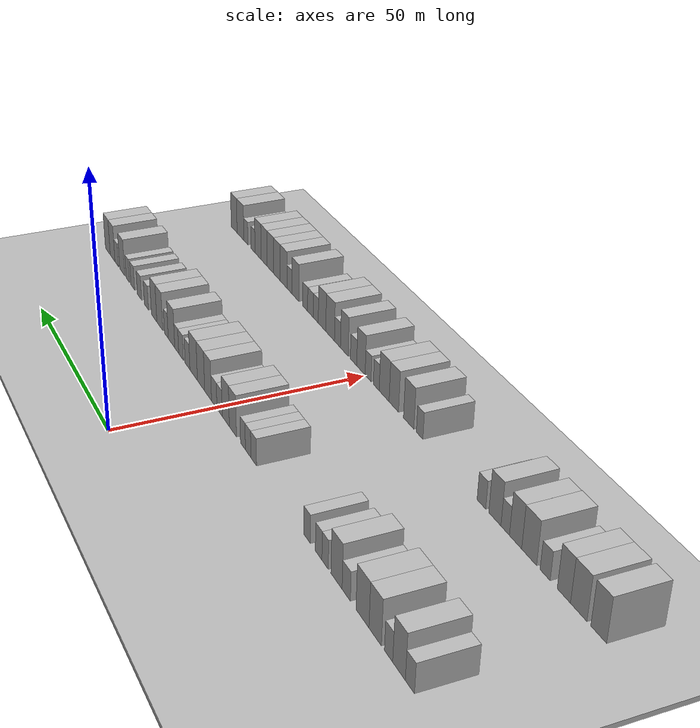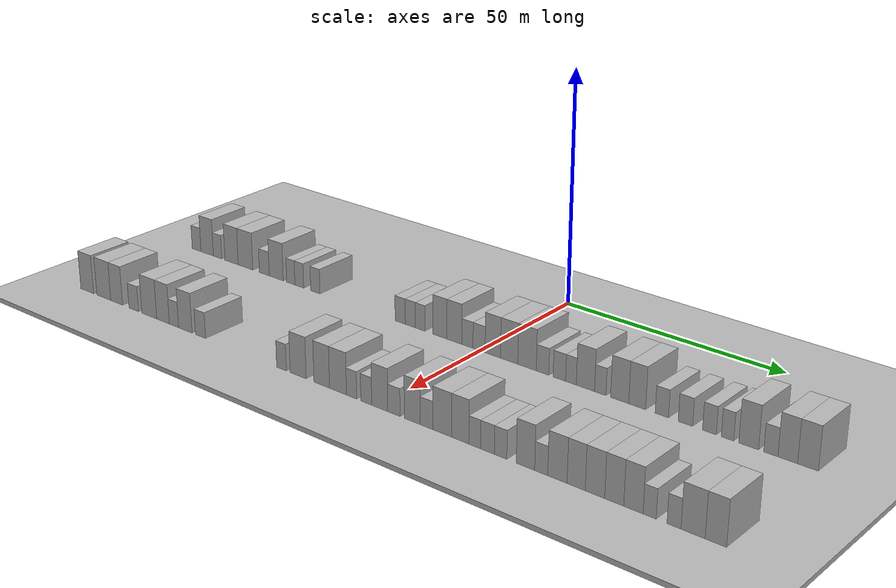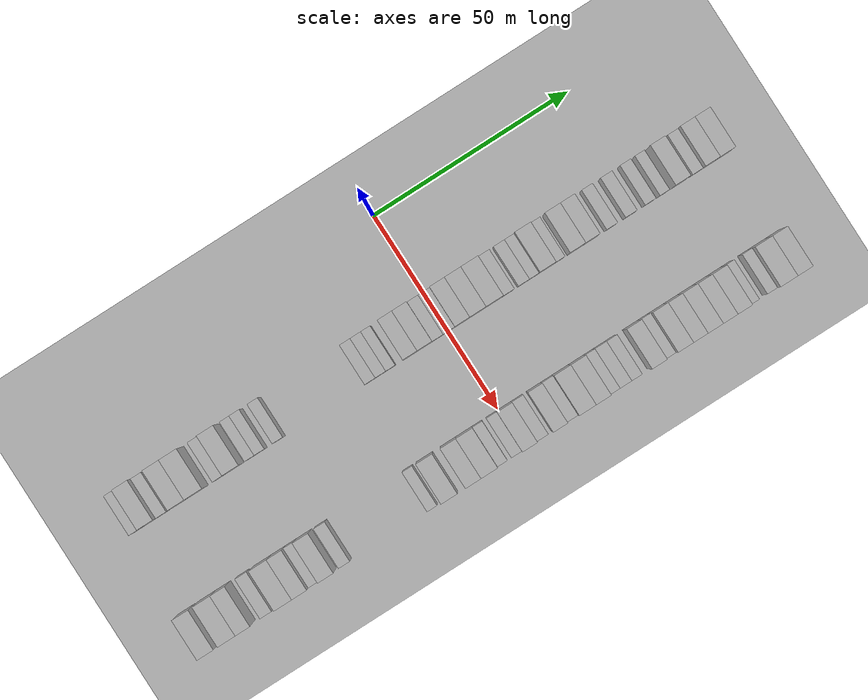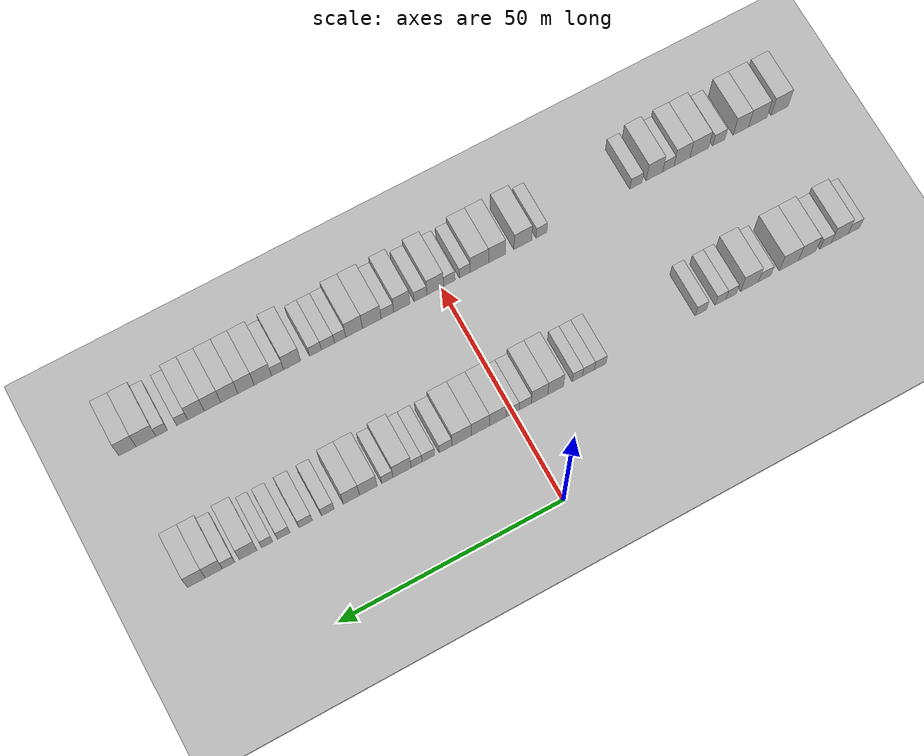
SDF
<sdf version="1.6">
 <world name="default">
  <include><name>ground_plane_1</name><uri>model://HANNAS_ground_plane</uri></include>
  <include>
   <name>ground_plane_2</name>
   <uri>model://HANNAS_ground_plane</uri>
   <pose>100 0 0  0 0 0</pose>
  </include>
  <model name="building_38">
   <static>1</static>
   <pose>25.0000 -79.3378 0 0.000000 0.000000 0.000000</pose>
   <link name="link">
    <pose>0 0 3.00 0 0 0</pose>
    <collision name="collision"><geometry><box><size>10.0000 2.8163 6.0000</size></box></geometry></collision>
    <visual name="visual">
     <cast_shadows>0</cast_shadows>
     <geometry><box><size>10.0000 2.8163 6.0000</size></box></geometry>
     <material>
      <script>
       <uri>model://HANNAS_wall/materials/scripts</uri>
       <uri>model://HANNAS_wall/materials/textures</uri>
       <name>vrc/HANNAS_wall</name>
      </script>
     </material>
    </visual>
   </link>
  </model>
  <model name="building_39">
   <static>1</static>
   <pose>25.0000 -75.9396 0 0.000000 0.000000 0.000000</pose>
   <link name="link">
    <pose>0 0 4.50 0 0 0</pose>
    <collision name="collision"><geometry><box><size>10.0000 3.9802 9.0000</size></box></geometry></collision>
    <visual name="visual">
     <cast_shadows>0</cast_shadows>
     <geometry><box><size>10.0000 3.9802 9.0000</size></box></geometry>
     <material>
      <script>
       <uri>model://HANNAS_wall/materials/scripts</uri>
       <uri>model://HANNAS_wall/materials/textures</uri>
       <name>vrc/HANNAS_wall</name>
      </script>
     </material>
    </visual>
   </link>
  </model>
  <model name="building_40">
   <static>1</static>
   <pose>25.0000 -72.6092 0 0.000000 0.000000 0.000000</pose>
   <link name="link">
    <pose>0 0 3.00 0 0 0</pose>
    <collision name="collision"><geometry><box><size>10.0000 2.6807 6.0000</size></box></geometry></collision>
    <visual name="visual">
     <cast_shadows>0</cast_shadows>
     <geometry><box><size>10.0000 2.6807 6.0000</size></box></geometry>
     <material>
      <script>
       <uri>model://HANNAS_wall/materials/scripts</uri>
       <uri>model://HANNAS_wall/materials/textures</uri>
       <name>vrc/HANNAS_wall</name>
      </script>
     </material>
    </visual>
   </link>
  </model>
  <model name="building_41">
   <static>1</static>
   <pose>25.0000 -68.1912 0 0.000000 0.000000 0.000000</pose>
   <link name="link">
    <pose>0 0 4.50 0 0 0</pose>
    <collision name="collision"><geometry><box><size>10.0000 4.1552 9.0000</size></box></geometry></collision>
    <visual name="visual">
     <cast_shadows>0</cast_shadows>
     <geometry><box><size>10.0000 4.1552 9.0000</size></box></geometry>
     <material>
      <script>
       <uri>model://HANNAS_wall/materials/scripts</uri>
       <uri>model://HANNAS_wall/materials/textures</uri>
       <name>vrc/HANNAS_wall</name>
      </script>
     </material>
    </visual>
   </link>
  </model>
  <model name="building_42">
   <static>1</static>
   <pose>25.0000 -63.8648 0 0.000000 0.000000 0.000000</pose>
   <link name="link">
    <pose>0 0 4.50 0 0 0</pose>
    <collision name="collision"><geometry><box><size>10.0000 4.4976 9.0000</size></box></geometry></collision>
    <visual name="visual">
     <cast_shadows>0</cast_shadows>
     <geometry><box><size>10.0000 4.4976 9.0000</size></box></geometry>
     <material>
      <script>
       <uri>model://HANNAS_wall/materials/scripts</uri>
       <uri>model://HANNAS_wall/materials/textures</uri>
       <name>vrc/HANNAS_wall</name>
      </script>
     </material>
    </visual>
   </link>
  </model>
  <model name="building_43">
   <static>1</static>
   <pose>25.0000 -58.1235 0 0.000000 0.000000 0.000000</pose>
   <link name="link">
    <pose>0 0 3.00 0 0 0</pose>
    <collision name="collision"><geometry><box><size>10.0000 2.9851 6.0000</size></box></geometry></collision>
    <visual name="visual">
     <cast_shadows>0</cast_shadows>
     <geometry><box><size>10.0000 2.9851 6.0000</size></box></geometry>
     <material>
      <script>
       <uri>model://HANNAS_wall/materials/scripts</uri>
       <uri>model://HANNAS_wall/materials/textures</uri>
       <name>vrc/HANNAS_wall</name>
      </script>
     </material>
    </visual>
   </link>
  </model>
  <model name="building_44">
   <static>1</static>
   <pose>25.0000 -54.5474 0 0.000000 0.000000 0.000000</pose>
   <link name="link">
    <pose>0 0 4.50 0 0 0</pose>
    <collision name="collision"><geometry><box><size>10.0000 4.1671 9.0000</size></box></geometry></collision>
    <visual name="visual">
     <cast_shadows>0</cast_shadows>
     <geometry><box><size>10.0000 4.1671 9.0000</size></box></geometry>
     <material>
      <script>
       <uri>model://HANNAS_wall/materials/scripts</uri>
       <uri>model://HANNAS_wall/materials/textures</uri>
       <name>vrc/HANNAS_wall</name>
      </script>
     </material>
    </visual>
   </link>
  </model>
  <model name="building_45">
   <static>1</static>
   <pose>25.0000 -50.2409 0 0.000000 0.000000 0.000000</pose>
   <link name="link">
    <pose>0 0 3.00 0 0 0</pose>
    <collision name="collision"><geometry><box><size>10.0000 2.4461 6.0000</size></box></geometry></collision>
    <visual name="visual">
     <cast_shadows>0</cast_shadows>
     <geometry><box><size>10.0000 2.4461 6.0000</size></box></geometry>
     <material>
      <script>
       <uri>model://HANNAS_wall/materials/scripts</uri>
       <uri>model://HANNAS_wall/materials/textures</uri>
       <name>vrc/HANNAS_wall</name>
      </script>
     </material>
    </visual>
   </link>
  </model>
  <model name="building_46">
   <static>1</static>
   <pose>25.0000 -47.7327 0 0.000000 0.000000 0.000000</pose>
   <link name="link">
    <pose>0 0 3.00 0 0 0</pose>
    <collision name="collision"><geometry><box><size>10.0000 2.5703 6.0000</size></box></geometry></collision>
    <visual name="visual">
     <cast_shadows>0</cast_shadows>
     <geometry><box><size>10.0000 2.5703 6.0000</size></box></geometry>
     <material>
      <script>
       <uri>model://HANNAS_wall/materials/scripts</uri>
       <uri>model://HANNAS_wall/materials/textures</uri>
       <name>vrc/HANNAS_wall</name>
      </script>
     </material>
    </visual>
   </link>
  </model>
  <model name="building_47">
   <static>1</static>
   <pose>25.0000 -43.1132 0 0.000000 0.000000 0.000000</pose>
   <link name="link">
    <pose>0 0 3.00 0 0 0</pose>
    <collision name="collision"><geometry><box><size>10.0000 2.6686 6.0000</size></box></geometry></collision>
    <visual name="visual">
     <cast_shadows>0</cast_shadows>
     <geometry><box><size>10.0000 2.6686 6.0000</size></box></geometry>
     <material>
      <script>
       <uri>model://HANNAS_wall/materials/scripts</uri>
       <uri>model://HANNAS_wall/materials/textures</uri>
       <name>vrc/HANNAS_wall</name>
      </script>
     </material>
    </visual>
   </link>
  </model>
  <model name="building_48">
   <static>1</static>
   <pose>25.0000 -19.7409 0 0.000000 0.000000 0.000000</pose>
   <link name="link">
    <pose>0 0 3.00 0 0 0</pose>
    <collision name="collision"><geometry><box><size>10.0000 2.6920 6.0000</size></box></geometry></collision>
    <visual name="visual">
     <cast_shadows>0</cast_shadows>
     <geometry><box><size>10.0000 2.6920 6.0000</size></box></geometry>
     <material>
      <script>
       <uri>model://HANNAS_wall/materials/scripts</uri>
       <uri>model://HANNAS_wall/materials/textures</uri>
       <name>vrc/HANNAS_wall</name>
      </script>
     </material>
    </visual>
   </link>
  </model>
  <model name="building_49">
   <static>1</static>
   <pose>25.0000 -17.0613 0 0.000000 0.000000 0.000000</pose>
   <link name="link">
    <pose>0 0 3.00 0 0 0</pose>
    <collision name="collision"><geometry><box><size>10.0000 2.6673 6.0000</size></box></geometry></collision>
    <visual name="visual">
     <cast_shadows>0</cast_shadows>
     <geometry><box><size>10.0000 2.6673 6.0000</size></box></geometry>
     <material>
      <script>
       <uri>model://HANNAS_wall/materials/scripts</uri>
       <uri>model://HANNAS_wall/materials/textures</uri>
       <name>vrc/HANNAS_wall</name>
      </script>
     </material>
    </visual>
   </link>
  </model>
  <model name="building_50">
   <static>1</static>
   <pose>25.0000 -14.5244 0 0.000000 0.000000 0.000000</pose>
   <link name="link">
    <pose>0 0 3.00 0 0 0</pose>
    <collision name="collision"><geometry><box><size>10.0000 2.4065 6.0000</size></box></geometry></collision>
    <visual name="visual">
     <cast_shadows>0</cast_shadows>
     <geometry><box><size>10.0000 2.4065 6.0000</size></box></geometry>
     <material>
      <script>
       <uri>model://HANNAS_wall/materials/scripts</uri>
       <uri>model://HANNAS_wall/materials/textures</uri>
       <name>vrc/HANNAS_wall</name>
      </script>
     </material>
    </visual>
   </link>
  </model>
  <model name="building_51">
   <static>1</static>
   <pose>25.0000 -9.5080 0 0.000000 0.000000 0.000000</pose>
   <link name="link">
    <pose>0 0 4.50 0 0 0</pose>
    <collision name="collision"><geometry><box><size>10.0000 3.6264 9.0000</size></box></geometry></collision>
    <visual name="visual">
     <cast_shadows>0</cast_shadows>
     <geometry><box><size>10.0000 3.6264 9.0000</size></box></geometry>
     <material>
      <script>
       <uri>model://HANNAS_wall/materials/scripts</uri>
       <uri>model://HANNAS_wall/materials/textures</uri>
       <name>vrc/HANNAS_wall</name>
      </script>
     </material>
    </visual>
   </link>
  </model>
  <model name="building_52">
   <static>1</static>
   <pose>25.0000 -5.8347 0 0.000000 0.000000 0.000000</pose>
   <link name="link">
    <pose>0 0 4.50 0 0 0</pose>
    <collision name="collision"><geometry><box><size>10.0000 3.7202 9.0000</size></box></geometry></collision>
    <visual name="visual">
     <cast_shadows>0</cast_shadows>
     <geometry><box><size>10.0000 3.7202 9.0000</size></box></geometry>
     <material>
      <script>
       <uri>model://HANNAS_wall/materials/scripts</uri>
       <uri>model://HANNAS_wall/materials/textures</uri>
       <name>vrc/HANNAS_wall</name>
      </script>
     </material>
    </visual>
   </link>
  </model>
  <model name="building_53">
   <static>1</static>
   <pose>25.0000 -2.5876 0 0.000000 0.000000 0.000000</pose>
   <link name="link">
    <pose>0 0 3.00 0 0 0</pose>
    <collision name="collision"><geometry><box><size>10.0000 2.7738 6.0000</size></box></geometry></collision>
    <visual name="visual">
     <cast_shadows>0</cast_shadows>
     <geometry><box><size>10.0000 2.7738 6.0000</size></box></geometry>
     <material>
      <script>
       <uri>model://HANNAS_wall/materials/scripts</uri>
       <uri>model://HANNAS_wall/materials/textures</uri>
       <name>vrc/HANNAS_wall</name>
      </script>
     </material>
    </visual>
   </link>
  </model>
  <model name="building_54">
   <static>1</static>
   <pose>25.0000 0.2778 0 0.000000 0.000000 0.000000</pose>
   <link name="link">
    <pose>0 0 3.00 0 0 0</pose>
    <collision name="collision"><geometry><box><size>10.0000 2.9571 6.0000</size></box></geometry></collision>
    <visual name="visual">
     <cast_shadows>0</cast_shadows>
     <geometry><box><size>10.0000 2.9571 6.0000</size></box></geometry>
     <material>
      <script>
       <uri>model://HANNAS_wall/materials/scripts</uri>
       <uri>model://HANNAS_wall/materials/textures</uri>
       <name>vrc/HANNAS_wall</name>
      </script>
     </material>
    </visual>
   </link>
  </model>
  <model name="building_55">
   <static>1</static>
   <pose>25.0000 3.6304 0 0.000000 0.000000 0.000000</pose>
   <link name="link">
    <pose>0 0 4.50 0 0 0</pose>
    <collision name="collision"><geometry><box><size>10.0000 3.7481 9.0000</size></box></geometry></collision>
    <visual name="visual">
     <cast_shadows>0</cast_shadows>
     <geometry><box><size>10.0000 3.7481 9.0000</size></box></geometry>
     <material>
      <script>
       <uri>model://HANNAS_wall/materials/scripts</uri>
       <uri>model://HANNAS_wall/materials/textures</uri>
       <name>vrc/HANNAS_wall</name>
      </script>
     </material>
    </visual>
   </link>
  </model>
  <model name="building_56">
   <static>1</static>
   <pose>25.0000 7.5608 0 0.000000 0.000000 0.000000</pose>
   <link name="link">
    <pose>0 0 4.50 0 0 0</pose>
    <collision name="collision"><geometry><box><size>10.0000 4.1126 9.0000</size></box></geometry></collision>
    <visual name="visual">
     <cast_shadows>0</cast_shadows>
     <geometry><box><size>10.0000 4.1126 9.0000</size></box></geometry>
     <material>
      <script>
       <uri>model://HANNAS_wall/materials/scripts</uri>
       <uri>model://HANNAS_wall/materials/textures</uri>
       <name>vrc/HANNAS_wall</name>
      </script>
     </material>
    </visual>
   </link>
  </model>
  <model name="building_57">
   <static>1</static>
   <pose>25.0000 11.7900 0 0.000000 0.000000 0.000000</pose>
   <link name="link">
    <pose>0 0 4.50 0 0 0</pose>
    <collision name="collision"><geometry><box><size>10.0000 4.3458 9.0000</size></box></geometry></collision>
    <visual name="visual">
     <cast_shadows>0</cast_shadows>
     <geometry><box><size>10.0000 4.3458 9.0000</size></box></geometry>
     <material>
      <script>
       <uri>model://HANNAS_wall/materials/scripts</uri>
       <uri>model://HANNAS_wall/materials/textures</uri>
       <name>vrc/HANNAS_wall</name>
      </script>
     </material>
    </visual>
   </link>
  </model>
  <model name="building_58">
   <static>1</static>
   <pose>25.0000 15.4108 0 0.000000 0.000000 0.000000</pose>
   <link name="link">
    <pose>0 0 3.00 0 0 0</pose>
    <collision name="collision"><geometry><box><size>10.0000 2.8957 6.0000</size></box></geometry></collision>
    <visual name="visual">
     <cast_shadows>0</cast_shadows>
     <geometry><box><size>10.0000 2.8957 6.0000</size></box></geometry>
     <material>
      <script>
       <uri>model://HANNAS_wall/materials/scripts</uri>
       <uri>model://HANNAS_wall/materials/textures</uri>
       <name>vrc/HANNAS_wall</name>
      </script>
     </material>
    </visual>
   </link>
  </model>
  <model name="building_59">
   <static>1</static>
   <pose>25.0000 19.2690 0 0.000000 0.000000 0.000000</pose>
   <link name="link">
    <pose>0 0 3.00 0 0 0</pose>
    <collision name="collision"><geometry><box><size>10.0000 2.8208 6.0000</size></box></geometry></collision>
    <visual name="visual">
     <cast_shadows>0</cast_shadows>
     <geometry><box><size>10.0000 2.8208 6.0000</size></box></geometry>
     <material>
      <script>
       <uri>model://HANNAS_wall/materials/scripts</uri>
       <uri>model://HANNAS_wall/materials/textures</uri>
       <name>vrc/HANNAS_wall</name>
      </script>
     </material>
    </visual>
   </link>
  </model>
  <model name="building_60">
   <static>1</static>
   <pose>25.0000 21.8940 0 0.000000 0.000000 0.000000</pose>
   <link name="link">
    <pose>0 0 3.00 0 0 0</pose>
    <collision name="collision"><geometry><box><size>10.0000 2.4291 6.0000</size></box></geometry></collision>
    <visual name="visual">
     <cast_shadows>0</cast_shadows>
     <geometry><box><size>10.0000 2.4291 6.0000</size></box></geometry>
     <material>
      <script>
       <uri>model://HANNAS_wall/materials/scripts</uri>
       <uri>model://HANNAS_wall/materials/textures</uri>
       <name>vrc/HANNAS_wall</name>
      </script>
     </material>
    </visual>
   </link>
  </model>
  <model name="building_61">
   <static>1</static>
   <pose>25.0000 25.1440 0 0.000000 0.000000 0.000000</pose>
   <link name="link">
    <pose>0 0 4.50 0 0 0</pose>
    <collision name="collision"><geometry><box><size>10.0000 4.0709 9.0000</size></box></geometry></collision>
    <visual name="visual">
     <cast_shadows>0</cast_shadows>
     <geometry><box><size>10.0000 4.0709 9.0000</size></box></geometry>
     <material>
      <script>
       <uri>model://HANNAS_wall/materials/scripts</uri>
       <uri>model://HANNAS_wall/materials/textures</uri>
       <name>vrc/HANNAS_wall</name>
      </script>
     </material>
    </visual>
   </link>
  </model>
  <model name="building_62">
   <static>1</static>
   <pose>25.0000 28.4302 0 0.000000 0.000000 0.000000</pose>
   <link name="link">
    <pose>0 0 3.00 0 0 0</pose>
    <collision name="collision"><geometry><box><size>10.0000 2.5014 6.0000</size></box></geometry></collision>
    <visual name="visual">
     <cast_shadows>0</cast_shadows>
     <geometry><box><size>10.0000 2.5014 6.0000</size></box></geometry>
     <material>
      <script>
       <uri>model://HANNAS_wall/materials/scripts</uri>
       <uri>model://HANNAS_wall/materials/textures</uri>
       <name>vrc/HANNAS_wall</name>
      </script>
     </material>
    </visual>
   </link>
  </model>
  <model name="building_63">
   <static>1</static>
   <pose>25.0000 32.6398 0 0.000000 0.000000 0.000000</pose>
   <link name="link">
    <pose>0 0 4.50 0 0 0</pose>
    <collision name="collision"><geometry><box><size>10.0000 3.9178 9.0000</size></box></geometry></collision>
    <visual name="visual">
     <cast_shadows>0</cast_shadows>
     <geometry><box><size>10.0000 3.9178 9.0000</size></box></geometry>
     <material>
      <script>
       <uri>model://HANNAS_wall/materials/scripts</uri>
       <uri>model://HANNAS_wall/materials/textures</uri>
       <name>vrc/HANNAS_wall</name>
      </script>
     </material>
    </visual>
   </link>
  </model>
  <model name="building_64">
   <static>1</static>
   <pose>25.0000 36.4016 0 0.000000 0.000000 0.000000</pose>
   <link name="link">
    <pose>0 0 4.50 0 0 0</pose>
    <collision name="collision"><geometry><box><size>10.0000 3.6057 9.0000</size></box></geometry></collision>
    <visual name="visual">
     <cast_shadows>0</cast_shadows>
     <geometry><box><size>10.0000 3.6057 9.0000</size></box></geometry>
     <material>
      <script>
       <uri>model://HANNAS_wall/materials/scripts</uri>
       <uri>model://HANNAS_wall/materials/textures</uri>
       <name>vrc/HANNAS_wall</name>
      </script>
     </material>
    </visual>
   </link>
  </model>
  <model name="building_65">
   <static>1</static>
   <pose>25.0000 41.5970 0 0.000000 0.000000 0.000000</pose>
   <link name="link">
    <pose>0 0 3.00 0 0 0</pose>
    <collision name="collision"><geometry><box><size>10.0000 2.7852 6.0000</size></box></geometry></collision>
    <visual name="visual">
     <cast_shadows>0</cast_shadows>
     <geometry><box><size>10.0000 2.7852 6.0000</size></box></geometry>
     <material>
      <script>
       <uri>model://HANNAS_wall/materials/scripts</uri>
       <uri>model://HANNAS_wall/materials/textures</uri>
       <name>vrc/HANNAS_wall</name>
      </script>
     </material>
    </visual>
   </link>
  </model>
  <model name="building_66">
   <static>1</static>
   <pose>25.0000 46.4576 0 0.000000 0.000000 0.000000</pose>
   <link name="link">
    <pose>0 0 3.00 0 0 0</pose>
    <collision name="collision"><geometry><box><size>10.0000 2.9360 6.0000</size></box></geometry></collision>
    <visual name="visual">
     <cast_shadows>0</cast_shadows>
     <geometry><box><size>10.0000 2.9360 6.0000</size></box></geometry>
     <material>
      <script>
       <uri>model://HANNAS_wall/materials/scripts</uri>
       <uri>model://HANNAS_wall/materials/textures</uri>
       <name>vrc/HANNAS_wall</name>
      </script>
     </material>
    </visual>
   </link>
  </model>
  <model name="building_67">
   <static>1</static>
   <pose>25.0000 51.3011 0 0.000000 0.000000 0.000000</pose>
   <link name="link">
    <pose>0 0 3.00 0 0 0</pose>
    <collision name="collision"><geometry><box><size>10.0000 2.7510 6.0000</size></box></geometry></collision>
    <visual name="visual">
     <cast_shadows>0</cast_shadows>
     <geometry><box><size>10.0000 2.7510 6.0000</size></box></geometry>
     <material>
      <script>
       <uri>model://HANNAS_wall/materials/scripts</uri>
       <uri>model://HANNAS_wall/materials/textures</uri>
       <name>vrc/HANNAS_wall</name>
      </script>
     </material>
    </visual>
   </link>
  </model>
  <model name="building_68">
   <static>1</static>
   <pose>25.0000 54.8988 0 0.000000 0.000000 0.000000</pose>
   <link name="link">
    <pose>0 0 3.00 0 0 0</pose>
    <collision name="collision"><geometry><box><size>10.0000 2.4443 6.0000</size></box></geometry></collision>
    <visual name="visual">
     <cast_shadows>0</cast_shadows>
     <geometry><box><size>10.0000 2.4443 6.0000</size></box></geometry>
     <material>
      <script>
       <uri>model://HANNAS_wall/materials/scripts</uri>
       <uri>model://HANNAS_wall/materials/textures</uri>
       <name>vrc/HANNAS_wall</name>
      </script>
     </material>
    </visual>
   </link>
  </model>
  <model name="building_69">
   <static>1</static>
   <pose>25.0000 59.0341 0 0.000000 0.000000 0.000000</pose>
   <link name="link">
    <pose>0 0 4.50 0 0 0</pose>
    <collision name="collision"><geometry><box><size>10.0000 3.8263 9.0000</size></box></geometry></collision>
    <visual name="visual">
     <cast_shadows>0</cast_shadows>
     <geometry><box><size>10.0000 3.8263 9.0000</size></box></geometry>
     <material>
      <script>
       <uri>model://HANNAS_wall/materials/scripts</uri>
       <uri>model://HANNAS_wall/materials/textures</uri>
       <name>vrc/HANNAS_wall</name>
      </script>
     </material>
    </visual>
   </link>
  </model>
  <model name="building_70">
   <static>1</static>
   <pose>25.0000 63.2870 0 0.000000 0.000000 0.000000</pose>
   <link name="link">
    <pose>0 0 3.00 0 0 0</pose>
    <collision name="collision"><geometry><box><size>10.0000 2.6795 6.0000</size></box></geometry></collision>
    <visual name="visual">
     <cast_shadows>0</cast_shadows>
     <geometry><box><size>10.0000 2.6795 6.0000</size></box></geometry>
     <material>
      <script>
       <uri>model://HANNAS_wall/materials/scripts</uri>
       <uri>model://HANNAS_wall/materials/textures</uri>
       <name>vrc/HANNAS_wall</name>
      </script>
     </material>
    </visual>
   </link>
  </model>
  <model name="building_71">
   <static>1</static>
   <pose>25.0000 66.4737 0 0.000000 0.000000 0.000000</pose>
   <link name="link">
    <pose>0 0 4.50 0 0 0</pose>
    <collision name="collision"><geometry><box><size>10.0000 3.6940 9.0000</size></box></geometry></collision>
    <visual name="visual">
     <cast_shadows>0</cast_shadows>
     <geometry><box><size>10.0000 3.6940 9.0000</size></box></geometry>
     <material>
      <script>
       <uri>model://HANNAS_wall/materials/scripts</uri>
       <uri>model://HANNAS_wall/materials/textures</uri>
       <name>vrc/HANNAS_wall</name>
      </script>
     </material>
    </visual>
   </link>
  </model>
  <model name="building_72">
   <static>1</static>
   <pose>25.0000 70.2441 0 0.000000 0.000000 0.000000</pose>
   <link name="link">
    <pose>0 0 4.50 0 0 0</pose>
    <collision name="collision"><geometry><box><size>10.0000 3.8467 9.0000</size></box></geometry></collision>
    <visual name="visual">
     <cast_shadows>0</cast_shadows>
     <geometry><box><size>10.0000 3.8467 9.0000</size></box></geometry>
     <material>
      <script>
       <uri>model://HANNAS_wall/materials/scripts</uri>
       <uri>model://HANNAS_wall/materials/textures</uri>
       <name>vrc/HANNAS_wall</name>
      </script>
     </material>
    </visual>
   </link>
  </model>
  <model name="building_140">
   <static>1</static>
   <pose>55.0000 -79.9674 0 0.000000 0.000000 0.000000</pose>
   <link name="link">
    <pose>0 0 4.50 0 0 0</pose>
    <collision name="collision"><geometry><box><size>10.0000 4.1324 9.0000</size></box></geometry></collision>
    <visual name="visual">
     <cast_shadows>0</cast_shadows>
     <geometry><box><size>10.0000 4.1324 9.0000</size></box></geometry>
     <material>
      <script>
       <uri>model://HANNAS_wall/materials/scripts</uri>
       <uri>model://HANNAS_wall/materials/textures</uri>
       <name>vrc/HANNAS_wall</name>
      </script>
     </material>
    </visual>
   </link>
  </model>
  <model name="building_141">
   <static>1</static>
   <pose>55.0000 -74.6746 0 0.000000 0.000000 0.000000</pose>
   <link name="link">
    <pose>0 0 4.50 0 0 0</pose>
    <collision name="collision"><geometry><box><size>10.0000 4.4532 9.0000</size></box></geometry></collision>
    <visual name="visual">
     <cast_shadows>0</cast_shadows>
     <geometry><box><size>10.0000 4.4532 9.0000</size></box></geometry>
     <material>
      <script>
       <uri>model://HANNAS_wall/materials/scripts</uri>
       <uri>model://HANNAS_wall/materials/textures</uri>
       <name>vrc/HANNAS_wall</name>
      </script>
     </material>
    </visual>
   </link>
  </model>
  <model name="building_142">
   <static>1</static>
   <pose>55.0000 -70.5983 0 0.000000 0.000000 0.000000</pose>
   <link name="link">
    <pose>0 0 4.50 0 0 0</pose>
    <collision name="collision"><geometry><box><size>10.0000 3.6994 9.0000</size></box></geometry></collision>
    <visual name="visual">
     <cast_shadows>0</cast_shadows>
     <geometry><box><size>10.0000 3.6994 9.0000</size></box></geometry>
     <material>
      <script>
       <uri>model://HANNAS_wall/materials/scripts</uri>
       <uri>model://HANNAS_wall/materials/textures</uri>
       <name>vrc/HANNAS_wall</name>
      </script>
     </material>
    </visual>
   </link>
  </model>
  <model name="building_143">
   <static>1</static>
   <pose>55.0000 -65.2769 0 0.000000 0.000000 0.000000</pose>
   <link name="link">
    <pose>0 0 3.00 0 0 0</pose>
    <collision name="collision"><geometry><box><size>10.0000 2.9434 6.0000</size></box></geometry></collision>
    <visual name="visual">
     <cast_shadows>0</cast_shadows>
     <geometry><box><size>10.0000 2.9434 6.0000</size></box></geometry>
     <material>
      <script>
       <uri>model://HANNAS_wall/materials/scripts</uri>
       <uri>model://HANNAS_wall/materials/textures</uri>
       <name>vrc/HANNAS_wall</name>
      </script>
     </material>
    </visual>
   </link>
  </model>
  <model name="building_144">
   <static>1</static>
   <pose>55.0000 -60.5575 0 0.000000 0.000000 0.000000</pose>
   <link name="link">
    <pose>0 0 4.50 0 0 0</pose>
    <collision name="collision"><geometry><box><size>10.0000 4.4954 9.0000</size></box></geometry></collision>
    <visual name="visual">
     <cast_shadows>0</cast_shadows>
     <geometry><box><size>10.0000 4.4954 9.0000</size></box></geometry>
     <material>
      <script>
       <uri>model://HANNAS_wall/materials/scripts</uri>
       <uri>model://HANNAS_wall/materials/textures</uri>
       <name>vrc/HANNAS_wall</name>
      </script>
     </material>
    </visual>
   </link>
  </model>
  <model name="building_145">
   <static>1</static>
   <pose>55.0000 -56.4170 0 0.000000 0.000000 0.000000</pose>
   <link name="link">
    <pose>0 0 4.50 0 0 0</pose>
    <collision name="collision"><geometry><box><size>10.0000 3.7855 9.0000</size></box></geometry></collision>
    <visual name="visual">
     <cast_shadows>0</cast_shadows>
     <geometry><box><size>10.0000 3.7855 9.0000</size></box></geometry>
     <material>
      <script>
       <uri>model://HANNAS_wall/materials/scripts</uri>
       <uri>model://HANNAS_wall/materials/textures</uri>
       <name>vrc/HANNAS_wall</name>
      </script>
     </material>
    </visual>
   </link>
  </model>
  <model name="building_146">
   <static>1</static>
   <pose>55.0000 -53.1741 0 0.000000 0.000000 0.000000</pose>
   <link name="link">
    <pose>0 0 3.00 0 0 0</pose>
    <collision name="collision"><geometry><box><size>10.0000 2.7004 6.0000</size></box></geometry></collision>
    <visual name="visual">
     <cast_shadows>0</cast_shadows>
     <geometry><box><size>10.0000 2.7004 6.0000</size></box></geometry>
     <material>
      <script>
       <uri>model://HANNAS_wall/materials/scripts</uri>
       <uri>model://HANNAS_wall/materials/textures</uri>
       <name>vrc/HANNAS_wall</name>
      </script>
     </material>
    </visual>
   </link>
  </model>
  <model name="building_147">
   <static>1</static>
   <pose>55.0000 -49.8549 0 0.000000 0.000000 0.000000</pose>
   <link name="link">
    <pose>0 0 4.50 0 0 0</pose>
    <collision name="collision"><geometry><box><size>10.0000 3.9380 9.0000</size></box></geometry></collision>
    <visual name="visual">
     <cast_shadows>0</cast_shadows>
     <geometry><box><size>10.0000 3.9380 9.0000</size></box></geometry>
     <material>
      <script>
       <uri>model://HANNAS_wall/materials/scripts</uri>
       <uri>model://HANNAS_wall/materials/textures</uri>
       <name>vrc/HANNAS_wall</name>
      </script>
     </material>
    </visual>
   </link>
  </model>
  <model name="building_148">
   <static>1</static>
   <pose>55.0000 -45.4440 0 0.000000 0.000000 0.000000</pose>
   <link name="link">
    <pose>0 0 3.00 0 0 0</pose>
    <collision name="collision"><geometry><box><size>10.0000 2.8840 6.0000</size></box></geometry></collision>
    <visual name="visual">
     <cast_shadows>0</cast_shadows>
     <geometry><box><size>10.0000 2.8840 6.0000</size></box></geometry>
     <material>
      <script>
       <uri>model://HANNAS_wall/materials/scripts</uri>
       <uri>model://HANNAS_wall/materials/textures</uri>
       <name>vrc/HANNAS_wall</name>
      </script>
     </material>
    </visual>
   </link>
  </model>
  <model name="building_149">
   <static>1</static>
   <pose>55.0000 -23.1875 0 0.000000 0.000000 0.000000</pose>
   <link name="link">
    <pose>0 0 3.00 0 0 0</pose>
    <collision name="collision"><geometry><box><size>10.0000 2.5430 6.0000</size></box></geometry></collision>
    <visual name="visual">
     <cast_shadows>0</cast_shadows>
     <geometry><box><size>10.0000 2.5430 6.0000</size></box></geometry>
     <material>
      <script>
       <uri>model://HANNAS_wall/materials/scripts</uri>
       <uri>model://HANNAS_wall/materials/textures</uri>
       <name>vrc/HANNAS_wall</name>
      </script>
     </material>
    </visual>
   </link>
  </model>
  <model name="building_150">
   <static>1</static>
   <pose>55.0000 -18.8462 0 0.000000 0.000000 0.000000</pose>
   <link name="link">
    <pose>0 0 4.50 0 0 0</pose>
    <collision name="collision"><geometry><box><size>10.0000 4.1396 9.0000</size></box></geometry></collision>
    <visual name="visual">
     <cast_shadows>0</cast_shadows>
     <geometry><box><size>10.0000 4.1396 9.0000</size></box></geometry>
     <material>
      <script>
       <uri>model://HANNAS_wall/materials/scripts</uri>
       <uri>model://HANNAS_wall/materials/textures</uri>
       <name>vrc/HANNAS_wall</name>
      </script>
     </material>
    </visual>
   </link>
  </model>
  <model name="building_151">
   <static>1</static>
   <pose>55.0000 -12.8151 0 0.000000 0.000000 0.000000</pose>
   <link name="link">
    <pose>0 0 4.50 0 0 0</pose>
    <collision name="collision"><geometry><box><size>10.0000 3.9226 9.0000</size></box></geometry></collision>
    <visual name="visual">
     <cast_shadows>0</cast_shadows>
     <geometry><box><size>10.0000 3.9226 9.0000</size></box></geometry>
     <material>
      <script>
       <uri>model://HANNAS_wall/materials/scripts</uri>
       <uri>model://HANNAS_wall/materials/textures</uri>
       <name>vrc/HANNAS_wall</name>
      </script>
     </material>
    </visual>
   </link>
  </model>
  <model name="building_152">
   <static>1</static>
   <pose>55.0000 -8.7503 0 0.000000 0.000000 0.000000</pose>
   <link name="link">
    <pose>0 0 4.50 0 0 0</pose>
    <collision name="collision"><geometry><box><size>10.0000 4.2069 9.0000</size></box></geometry></collision>
    <visual name="visual">
     <cast_shadows>0</cast_shadows>
     <geometry><box><size>10.0000 4.2069 9.0000</size></box></geometry>
     <material>
      <script>
       <uri>model://HANNAS_wall/materials/scripts</uri>
       <uri>model://HANNAS_wall/materials/textures</uri>
       <name>vrc/HANNAS_wall</name>
      </script>
     </material>
    </visual>
   </link>
  </model>
  <model name="building_153">
   <static>1</static>
   <pose>55.0000 -5.3860 0 0.000000 0.000000 0.000000</pose>
   <link name="link">
    <pose>0 0 3.00 0 0 0</pose>
    <collision name="collision"><geometry><box><size>10.0000 2.5217 6.0000</size></box></geometry></collision>
    <visual name="visual">
     <cast_shadows>0</cast_shadows>
     <geometry><box><size>10.0000 2.5217 6.0000</size></box></geometry>
     <material>
      <script>
       <uri>model://HANNAS_wall/materials/scripts</uri>
       <uri>model://HANNAS_wall/materials/textures</uri>
       <name>vrc/HANNAS_wall</name>
      </script>
     </material>
    </visual>
   </link>
  </model>
  <model name="building_154">
   <static>1</static>
   <pose>55.0000 -1.8043 0 0.000000 0.000000 0.000000</pose>
   <link name="link">
    <pose>0 0 3.00 0 0 0</pose>
    <collision name="collision"><geometry><box><size>10.0000 2.6418 6.0000</size></box></geometry></collision>
    <visual name="visual">
     <cast_shadows>0</cast_shadows>
     <geometry><box><size>10.0000 2.6418 6.0000</size></box></geometry>
     <material>
      <script>
       <uri>model://HANNAS_wall/materials/scripts</uri>
       <uri>model://HANNAS_wall/materials/textures</uri>
       <name>vrc/HANNAS_wall</name>
      </script>
     </material>
    </visual>
   </link>
  </model>
  <model name="building_155">
   <static>1</static>
   <pose>55.0000 1.4266 0 0.000000 0.000000 0.000000</pose>
   <link name="link">
    <pose>0 0 4.50 0 0 0</pose>
    <collision name="collision"><geometry><box><size>10.0000 3.8198 9.0000</size></box></geometry></collision>
    <visual name="visual">
     <cast_shadows>0</cast_shadows>
     <geometry><box><size>10.0000 3.8198 9.0000</size></box></geometry>
     <material>
      <script>
       <uri>model://HANNAS_wall/materials/scripts</uri>
       <uri>model://HANNAS_wall/materials/textures</uri>
       <name>vrc/HANNAS_wall</name>
      </script>
     </material>
    </visual>
   </link>
  </model>
  <model name="building_156">
   <static>1</static>
   <pose>55.0000 4.7923 0 0.000000 0.000000 0.000000</pose>
   <link name="link">
    <pose>0 0 3.00 0 0 0</pose>
    <collision name="collision"><geometry><box><size>10.0000 2.9116 6.0000</size></box></geometry></collision>
    <visual name="visual">
     <cast_shadows>0</cast_shadows>
     <geometry><box><size>10.0000 2.9116 6.0000</size></box></geometry>
     <material>
      <script>
       <uri>model://HANNAS_wall/materials/scripts</uri>
       <uri>model://HANNAS_wall/materials/textures</uri>
       <name>vrc/HANNAS_wall</name>
      </script>
     </material>
    </visual>
   </link>
  </model>
  <model name="building_157">
   <static>1</static>
   <pose>55.0000 9.0841 0 0.000000 0.000000 0.000000</pose>
   <link name="link">
    <pose>0 0 4.50 0 0 0</pose>
    <collision name="collision"><geometry><box><size>10.0000 3.6719 9.0000</size></box></geometry></collision>
    <visual name="visual">
     <cast_shadows>0</cast_shadows>
     <geometry><box><size>10.0000 3.6719 9.0000</size></box></geometry>
     <material>
      <script>
       <uri>model://HANNAS_wall/materials/scripts</uri>
       <uri>model://HANNAS_wall/materials/textures</uri>
       <name>vrc/HANNAS_wall</name>
      </script>
     </material>
    </visual>
   </link>
  </model>
  <model name="building_158">
   <static>1</static>
   <pose>55.0000 12.3547 0 0.000000 0.000000 0.000000</pose>
   <link name="link">
    <pose>0 0 3.00 0 0 0</pose>
    <collision name="collision"><geometry><box><size>10.0000 2.8694 6.0000</size></box></geometry></collision>
    <visual name="visual">
     <cast_shadows>0</cast_shadows>
     <geometry><box><size>10.0000 2.8694 6.0000</size></box></geometry>
     <material>
      <script>
       <uri>model://HANNAS_wall/materials/scripts</uri>
       <uri>model://HANNAS_wall/materials/textures</uri>
       <name>vrc/HANNAS_wall</name>
      </script>
     </material>
    </visual>
   </link>
  </model>
  <model name="building_159">
   <static>1</static>
   <pose>55.0000 15.9180 0 0.000000 0.000000 0.000000</pose>
   <link name="link">
    <pose>0 0 4.50 0 0 0</pose>
    <collision name="collision"><geometry><box><size>10.0000 4.2571 9.0000</size></box></geometry></collision>
    <visual name="visual">
     <cast_shadows>0</cast_shadows>
     <geometry><box><size>10.0000 4.2571 9.0000</size></box></geometry>
     <material>
      <script>
       <uri>model://HANNAS_wall/materials/scripts</uri>
       <uri>model://HANNAS_wall/materials/textures</uri>
       <name>vrc/HANNAS_wall</name>
      </script>
     </material>
    </visual>
   </link>
  </model>
  <model name="building_160">
   <static>1</static>
   <pose>55.0000 19.9426 0 0.000000 0.000000 0.000000</pose>
   <link name="link">
    <pose>0 0 4.50 0 0 0</pose>
    <collision name="collision"><geometry><box><size>10.0000 3.7922 9.0000</size></box></geometry></collision>
    <visual name="visual">
     <cast_shadows>0</cast_shadows>
     <geometry><box><size>10.0000 3.7922 9.0000</size></box></geometry>
     <material>
      <script>
       <uri>model://HANNAS_wall/materials/scripts</uri>
       <uri>model://HANNAS_wall/materials/textures</uri>
       <name>vrc/HANNAS_wall</name>
      </script>
     </material>
    </visual>
   </link>
  </model>
  <model name="building_161">
   <static>1</static>
   <pose>55.0000 23.1202 0 0.000000 0.000000 0.000000</pose>
   <link name="link">
    <pose>0 0 3.00 0 0 0</pose>
    <collision name="collision"><geometry><box><size>10.0000 2.5632 6.0000</size></box></geometry></collision>
    <visual name="visual">
     <cast_shadows>0</cast_shadows>
     <geometry><box><size>10.0000 2.5632 6.0000</size></box></geometry>
     <material>
      <script>
       <uri>model://HANNAS_wall/materials/scripts</uri>
       <uri>model://HANNAS_wall/materials/textures</uri>
       <name>vrc/HANNAS_wall</name>
      </script>
     </material>
    </visual>
   </link>
  </model>
  <model name="building_162">
   <static>1</static>
   <pose>55.0000 25.8810 0 0.000000 0.000000 0.000000</pose>
   <link name="link">
    <pose>0 0 3.00 0 0 0</pose>
    <collision name="collision"><geometry><box><size>10.0000 2.9584 6.0000</size></box></geometry></collision>
    <visual name="visual">
     <cast_shadows>0</cast_shadows>
     <geometry><box><size>10.0000 2.9584 6.0000</size></box></geometry>
     <material>
      <script>
       <uri>model://HANNAS_wall/materials/scripts</uri>
       <uri>model://HANNAS_wall/materials/textures</uri>
       <name>vrc/HANNAS_wall</name>
      </script>
     </material>
    </visual>
   </link>
  </model>
  <model name="building_163">
   <static>1</static>
   <pose>55.0000 28.6953 0 0.000000 0.000000 0.000000</pose>
   <link name="link">
    <pose>0 0 3.00 0 0 0</pose>
    <collision name="collision"><geometry><box><size>10.0000 2.6702 6.0000</size></box></geometry></collision>
    <visual name="visual">
     <cast_shadows>0</cast_shadows>
     <geometry><box><size>10.0000 2.6702 6.0000</size></box></geometry>
     <material>
      <script>
       <uri>model://HANNAS_wall/materials/scripts</uri>
       <uri>model://HANNAS_wall/materials/textures</uri>
       <name>vrc/HANNAS_wall</name>
      </script>
     </material>
    </visual>
   </link>
  </model>
  <model name="building_164">
   <static>1</static>
   <pose>55.0000 33.9431 0 0.000000 0.000000 0.000000</pose>
   <link name="link">
    <pose>0 0 4.50 0 0 0</pose>
    <collision name="collision"><geometry><box><size>10.0000 3.8254 9.0000</size></box></geometry></collision>
    <visual name="visual">
     <cast_shadows>0</cast_shadows>
     <geometry><box><size>10.0000 3.8254 9.0000</size></box></geometry>
     <material>
      <script>
       <uri>model://HANNAS_wall/materials/scripts</uri>
       <uri>model://HANNAS_wall/materials/textures</uri>
       <name>vrc/HANNAS_wall</name>
      </script>
     </material>
    </visual>
   </link>
  </model>
  <model name="building_165">
   <static>1</static>
   <pose>55.0000 37.1950 0 0.000000 0.000000 0.000000</pose>
   <link name="link">
    <pose>0 0 3.00 0 0 0</pose>
    <collision name="collision"><geometry><box><size>10.0000 2.6785 6.0000</size></box></geometry></collision>
    <visual name="visual">
     <cast_shadows>0</cast_shadows>
     <geometry><box><size>10.0000 2.6785 6.0000</size></box></geometry>
     <material>
      <script>
       <uri>model://HANNAS_wall/materials/scripts</uri>
       <uri>model://HANNAS_wall/materials/textures</uri>
       <name>vrc/HANNAS_wall</name>
      </script>
     </material>
    </visual>
   </link>
  </model>
  <model name="building_166">
   <static>1</static>
   <pose>55.0000 40.4906 0 0.000000 0.000000 0.000000</pose>
   <link name="link">
    <pose>0 0 4.50 0 0 0</pose>
    <collision name="collision"><geometry><box><size>10.0000 3.9127 9.0000</size></box></geometry></collision>
    <visual name="visual">
     <cast_shadows>0</cast_shadows>
     <geometry><box><size>10.0000 3.9127 9.0000</size></box></geometry>
     <material>
      <script>
       <uri>model://HANNAS_wall/materials/scripts</uri>
       <uri>model://HANNAS_wall/materials/textures</uri>
       <name>vrc/HANNAS_wall</name>
      </script>
     </material>
    </visual>
   </link>
  </model>
  <model name="building_167">
   <static>1</static>
   <pose>55.0000 44.2602 0 0.000000 0.000000 0.000000</pose>
   <link name="link">
    <pose>0 0 4.50 0 0 0</pose>
    <collision name="collision"><geometry><box><size>10.0000 3.6265 9.0000</size></box></geometry></collision>
    <visual name="visual">
     <cast_shadows>0</cast_shadows>
     <geometry><box><size>10.0000 3.6265 9.0000</size></box></geometry>
     <material>
      <script>
       <uri>model://HANNAS_wall/materials/scripts</uri>
       <uri>model://HANNAS_wall/materials/textures</uri>
       <name>vrc/HANNAS_wall</name>
      </script>
     </material>
    </visual>
   </link>
  </model>
  <model name="building_168">
   <static>1</static>
   <pose>55.0000 47.9798 0 0.000000 0.000000 0.000000</pose>
   <link name="link">
    <pose>0 0 4.50 0 0 0</pose>
    <collision name="collision"><geometry><box><size>10.0000 3.8125 9.0000</size></box></geometry></collision>
    <visual name="visual">
     <cast_shadows>0</cast_shadows>
     <geometry><box><size>10.0000 3.8125 9.0000</size></box></geometry>
     <material>
      <script>
       <uri>model://HANNAS_wall/materials/scripts</uri>
       <uri>model://HANNAS_wall/materials/textures</uri>
       <name>vrc/HANNAS_wall</name>
      </script>
     </material>
    </visual>
   </link>
  </model>
  <model name="building_169">
   <static>1</static>
   <pose>55.0000 51.7150 0 0.000000 0.000000 0.000000</pose>
   <link name="link">
    <pose>0 0 4.50 0 0 0</pose>
    <collision name="collision"><geometry><box><size>10.0000 3.6580 9.0000</size></box></geometry></collision>
    <visual name="visual">
     <cast_shadows>0</cast_shadows>
     <geometry><box><size>10.0000 3.6580 9.0000</size></box></geometry>
     <material>
      <script>
       <uri>model://HANNAS_wall/materials/scripts</uri>
       <uri>model://HANNAS_wall/materials/textures</uri>
       <name>vrc/HANNAS_wall</name>
      </script>
     </material>
    </visual>
   </link>
  </model>
  <model name="building_170">
   <static>1</static>
   <pose>55.0000 55.3796 0 0.000000 0.000000 0.000000</pose>
   <link name="link">
    <pose>0 0 4.50 0 0 0</pose>
    <collision name="collision"><geometry><box><size>10.0000 3.6713 9.0000</size></box></geometry></collision>
    <visual name="visual">
     <cast_shadows>0</cast_shadows>
     <geometry><box><size>10.0000 3.6713 9.0000</size></box></geometry>
     <material>
      <script>
       <uri>model://HANNAS_wall/materials/scripts</uri>
       <uri>model://HANNAS_wall/materials/textures</uri>
       <name>vrc/HANNAS_wall</name>
      </script>
     </material>
    </visual>
   </link>
  </model>
  <model name="building_171">
   <static>1</static>
   <pose>55.0000 58.4361 0 0.000000 0.000000 0.000000</pose>
   <link name="link">
    <pose>0 0 3.00 0 0 0</pose>
    <collision name="collision"><geometry><box><size>10.0000 2.4416 6.0000</size></box></geometry></collision>
    <visual name="visual">
     <cast_shadows>0</cast_shadows>
     <geometry><box><size>10.0000 2.4416 6.0000</size></box></geometry>
     <material>
      <script>
       <uri>model://HANNAS_wall/materials/scripts</uri>
       <uri>model://HANNAS_wall/materials/textures</uri>
       <name>vrc/HANNAS_wall</name>
      </script>
     </material>
    </visual>
   </link>
  </model>
  <model name="building_172">
   <static>1</static>
   <pose>55.0000 62.9286 0 0.000000 0.000000 0.000000</pose>
   <link name="link">
    <pose>0 0 3.00 0 0 0</pose>
    <collision name="collision"><geometry><box><size>10.0000 2.5433 6.0000</size></box></geometry></collision>
    <visual name="visual">
     <cast_shadows>0</cast_shadows>
     <geometry><box><size>10.0000 2.5433 6.0000</size></box></geometry>
     <material>
      <script>
       <uri>model://HANNAS_wall/materials/scripts</uri>
       <uri>model://HANNAS_wall/materials/textures</uri>
       <name>vrc/HANNAS_wall</name>
      </script>
     </material>
    </visual>
   </link>
  </model>
  <model name="building_173">
   <static>1</static>
   <pose>55.0000 66.3789 0 0.000000 0.000000 0.000000</pose>
   <link name="link">
    <pose>0 0 4.50 0 0 0</pose>
    <collision name="collision"><geometry><box><size>10.0000 4.3574 9.0000</size></box></geometry></collision>
    <visual name="visual">
     <cast_shadows>0</cast_shadows>
     <geometry><box><size>10.0000 4.3574 9.0000</size></box></geometry>
     <material>
      <script>
       <uri>model://HANNAS_wall/materials/scripts</uri>
       <uri>model://HANNAS_wall/materials/textures</uri>
       <name>vrc/HANNAS_wall</name>
      </script>
     </material>
    </visual>
   </link>
  </model>
  <model name="building_174">
   <static>1</static>
   <pose>55.0000 70.4599 0 0.000000 0.000000 0.000000</pose>
   <link name="link">
    <pose>0 0 4.50 0 0 0</pose>
    <collision name="collision"><geometry><box><size>10.0000 3.8046 9.0000</size></box></geometry></collision>
    <visual name="visual">
     <cast_shadows>0</cast_shadows>
     <geometry><box><size>10.0000 3.8046 9.0000</size></box></geometry>
     <material>
      <script>
       <uri>model://HANNAS_wall/materials/scripts</uri>
       <uri>model://HANNAS_wall/materials/textures</uri>
       <name>vrc/HANNAS_wall</name>
      </script>
     </material>
    </visual>
   </link>
  </model>
 </world>
</sdf>
